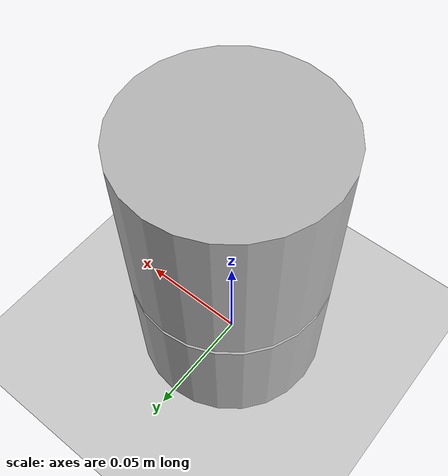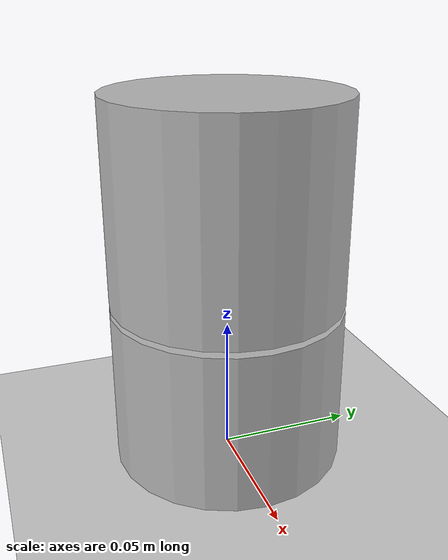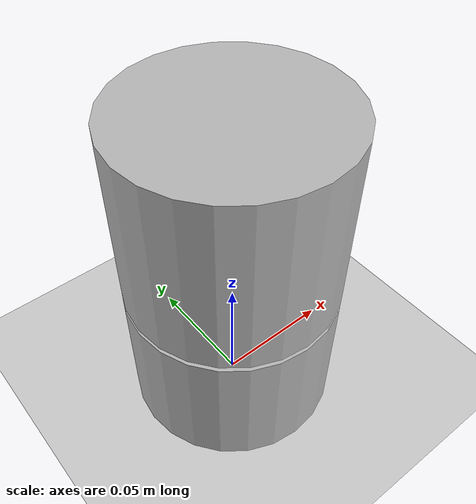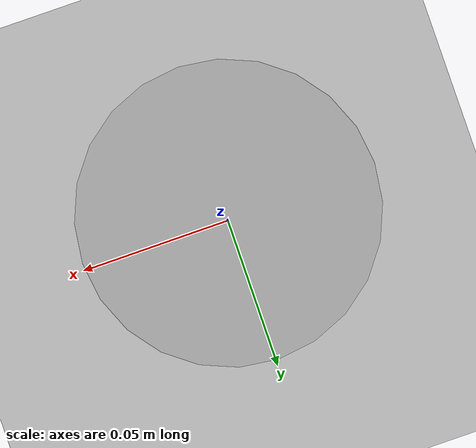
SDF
<?xml version='1.0'?>
<sdf version='1.5'>
  <world name="default">

    <!-- A global light source -->
    <include>
      <uri>model://sun</uri>
    </include>

    <!-- A ground plane -->
    <include>
      <uri>model://ground_plane</uri>
    </include>

    <model name="velodyne_hdl-32">
      <!-- Give the base link a unique name -->
      <link name="base">
        <!-- Offset the base by half the lenght of the cylinder -->
        <pose>0 0 0.029335 0 0 0</pose>
        <inertial>
          <mass>1.2</mass>
          <inertia>
            <ixx>0.00089044</ixx>
            <ixy>0</ixy>
            <ixz>0</ixz>
            <iyy>0.00089044</iyy>
            <iyz>0</iyz>
            <izz>0.00109244</izz>
          </inertia>
        </inertial>
        <collision name="base_collision">
          <geometry>
            <cylinder>
              <!-- Radius and length provided by Velodyne -->
              <radius>0.04267</radius>
              <length>0.05867</length>
            </cylinder>
          </geometry>
        </collision>

        <!-- The visual is mostly a copy of the collision -->
        <visual name="base_visual">
          <geometry>
            <cylinder>
              <radius>0.04267</radius>
              <length>0.05867</length>
            </cylinder>
          </geometry>
        </visual>
      </link>

      <!-- Give the top link a unique name -->
      <link name="top">
        <!-- Vertically offset the top cylinder by
             the length of the bottom cylinder
             and half the length of this cylinder
             and clearance 2.2mm -->
        <pose>0 0 0.097655 0 0 0</pose>
        <inertial>
          <mass>0.1</mass>
          <inertia>
            <ixx>0.00009062</ixx>
            <ixy>0</ixy>
            <ixz>0</ixz>
            <iyy>0.00009062</iyy>
            <iyz>0</iyz>
            <izz>0.00009104</izz>
          </inertia>
        </inertial>
        <collision name="top_collision">
          <geometry>
            <cylinder>
              <!-- Radius and length provided by Velodyne -->
              <radius>0.04267</radius>
              <length>0.07357</length>
            </cylinder>
          </geometry>
        </collision>

        <!-- The visual is mostly a copy of the collision -->
        <visual name="top_visual">
          <geometry>
            <cylinder>
              <radius>0.04267</radius>
              <length>0.07357</length>
            </cylinder>
          </geometry>
        </visual>
        <!-- Add a ray sensor, and give it a name -->
        <sensor type="ray" name="sensor">
          <pose>0 0 -0.004645 1.5707 0 0</pose>
          <!-- Enable visualization to see the rays in the GUI -->
          <visualize>true</visualize>
          <!-- Set the update rate of the sensor -->
          <update_rate>30</update_rate>
          <ray>
            <!-- The scan element contains the horizontal and vertical beams.
               We are leaving out the vertical beams for this tutorial. -->
            <scan>
              <!-- The horizontal beams -->
              <horizontal>
                <!-- The velodyne has 32 beams(samples) -->
                <samples>32</samples>
                <resolution>1</resolution>
                <!-- Minimum angle in radians -->
                <min_angle>-0.53529248</min_angle>
                <!-- Maximum angle in radians -->
                <max_angle>0.18622663</max_angle>
              </horizontal>
            </scan>
            <!-- Range defines characteristics of an individual beam -->
            <range>
              <!-- Minimum distance of the beam -->
              <min>0.05</min>
              <!-- Maximum distance of the beam -->
              <max>70</max>
              <!-- Linear resolution of the beam -->
              <resolution>0.02</resolution>
            </range>
          </ray>
        </sensor>
      </link>
      <!-- Each joint must have a unique name -->
      <joint name="base_joint_top" type="revolute">
        <!-- Position the joint at the bottom of the top link -->
        <pose>0 0 -0.036785 0 0 0</pose>
        <parent>base</parent>
        <child>top</child>

        <!-- The axis defines the joint's degree of freedom -->
        <axis>
          <!-- Revolve around the z-axis -->
          <xyz>0 0 1</xyz>
          <!-- Limit refers to the range of motion of the joint -->
          <limit>
            <!-- Use a very large number to indicate a continuous revolution -->
            <lower>-10000000000000000</lower>
            <upper>10000000000000000</upper>
          </limit>
        </axis>
      </joint>
    </model>
  </world>
</sdf>
